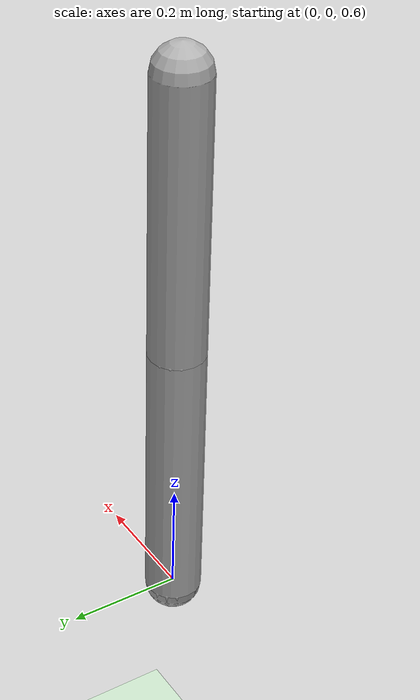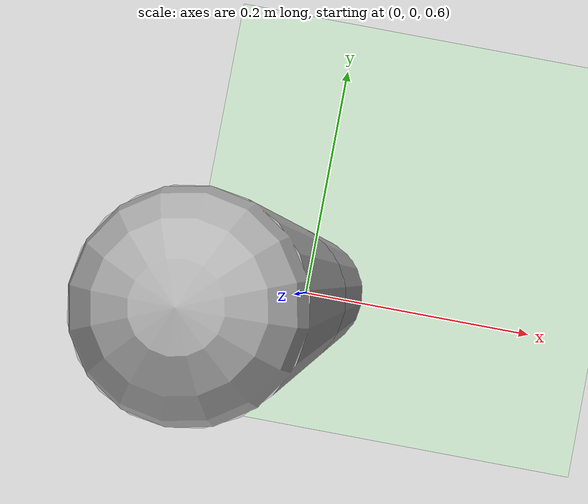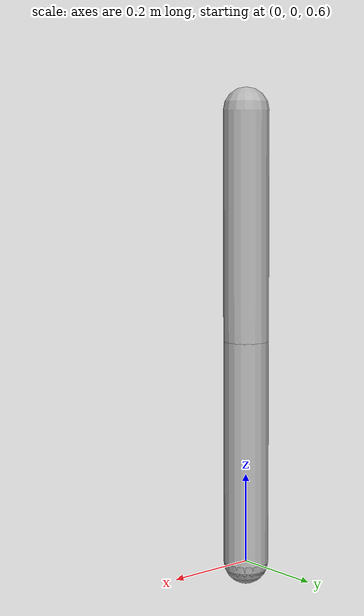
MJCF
<mujoco model="simple_leg">
  <compiler angle="degree"/>
  <option gravity="0 0 -9.81" timestep="0.002"/>

  <default>
    <geom rgba="0.7 0.7 0.7 1" contype="1" conaffinity="1"/>
    <joint damping="0.2"/>
  </default>

  <worldbody>
    <light diffuse="1 1 1" pos="0 0 3" dir="0 0 -1"/>
    <geom name="floor" type="plane" size="5 5 0.1" solref="0.02 1" rgba="0.8 0.9 0.8 1"/>

    <body name="base" pos="0 0 1.6">
      <geom name="base_geom" type="sphere" size="0.02"/>

      <body name="thigh" pos="0 0 0">
        <joint name="hip_joint" type="hinge" axis="0 1 0" pos="0 0 0" range="-60 60" limited="true"/>
        <geom name="thigh_geom" type="capsule" fromto="0 0 0 0 0 -0.5" size="0.05"/>

        <body name="shin" pos="0 0 -0.5">
          <joint name="knee_joint" type="hinge" axis="0 1 0" pos="0 0 0" range="-90 0" limited="true"/>
          <geom name="shin_geom" type="capsule" fromto="0 0 0 0 0 -0.5" size="0.05"/>

          <body name="foot" pos="0 0 -0.5">
            <geom name="foot_geom" type="sphere" size="0.05"/>
            <site name="foot_site" pos="0 0 0" size="0.05"/>
          </body>
        </body>
      </body>
    </body>
  </worldbody>

  <actuator>
    <position name="hip_pos_actuator" joint="hip_joint" kp="20" ctrlrange="-60 60"/>
    <velocity name="knee_vel_actuator" joint="knee_joint" kv="5" ctrlrange="-90 90"/>
  </actuator>

  <sensor>
    <touch name="foot_touch_sensor" site="foot_site"/>
    <jointpos name="hip_pos_sensor" joint="hip_joint"/>
    <jointvel name="knee_vel_sensor" joint="knee_joint"/>
  </sensor>
</mujoco>
